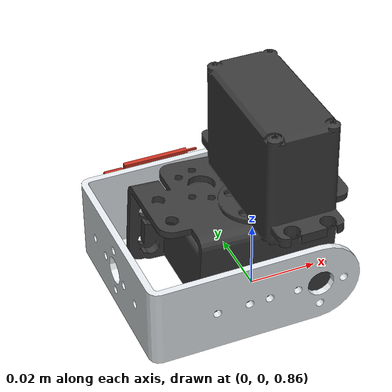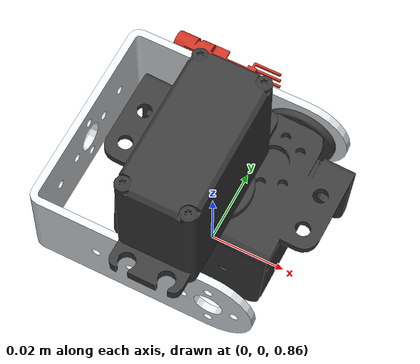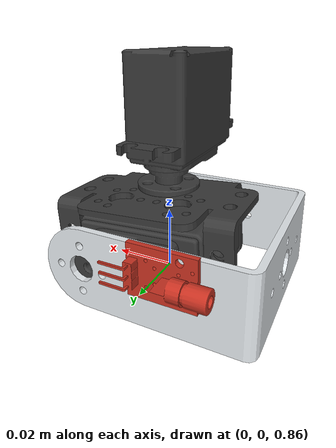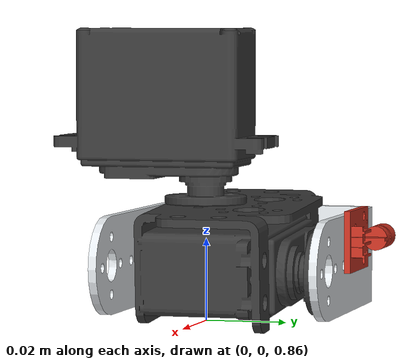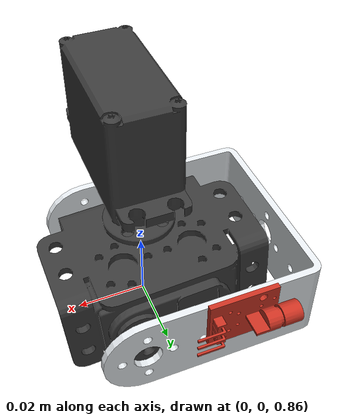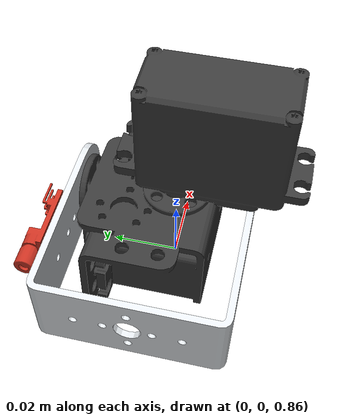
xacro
<?xml version="1.0" encoding="utf-8"?>
<robot xmlns:xacro="http://wiki.ros.org/xacro" name="treatement_equip">

  <link name="base_footprint"/>

  <link name="base_link">
    <inertial>
        <origin
          xyz="-0.00394141808918595 0.0171036303382102 0.0547408845032822"
          rpy="0 0 0" />
        <mass
          value="0.0294734098444175" />
        <inertia
          ixx="4.76394404449093E-06"
          ixy="-2.79739453844788E-13"
          ixz="-1.36431165613198E-13"
          iyy="4.91040634718246E-06"
          iyz="-1.92691774861277E-08"
          izz="1.70457014400278E-06" />
    </inertial>
    <visual>
        <origin
          xyz="0.0042 0.0645 0.0"
          rpy="0 0 0" />
        <geometry>
          <mesh
            filename="package://treatement_cv/meshes/base_link.STL" />
        </geometry>
        <material
          name="">
          <color
            rgba="0.227450980392157 0.227450980392157 0.227450980392157 1" />
        </material>
    </visual>
    <collision>
        <origin
          xyz="0 0 0"
          rpy="0 0 0" />
        <geometry>
          <mesh
            filename="package://treatement_cv/meshes/base_link.STL" />
        </geometry>
    </collision>
  </link>

  <joint name="base_footprint_to_base_joint" type="fixed">
    <origin
      xyz="0.0 0.0 0.93"
      rpy="0 3.141592653589793 3.141592653589793" />
    <parent
      link="base_footprint" />
    <child
      link="base_link" />
  </joint>

  <link name="shoulder_link">
    <inertial>
        <origin
          xyz="0.000437359115628169 0.0120183767154998 0.0051127992025653"
          rpy="0 0 0.06045" />
        <mass
          value="0.0461971155642295" />
        <inertia
          ixx="5.62085958159556E-06"
          ixy="-1.35468421184193E-13"
          ixz="-1.92691846480155E-08"
          iyy="1.18684212659114E-05"
          iyz="5.35655089902047E-07"
          izz="1.03961311052542E-05" />
    </inertial>
    <visual>
        <origin
          xyz="0 0 0"
          rpy="0 0 0.06045" />
        <geometry>
          <mesh
            filename="package://treatement_cv/meshes/shoulder_link.STL" />
        </geometry>
        <material
          name="">
          <color
            rgba="0.227450980392157 0.227450980392157 0.227450980392157 1" />
        </material>
    </visual>
    <collision>
        <origin
          xyz="0 0 0"
          rpy="0 0 0.06045" />
        <geometry>
          <mesh
            filename="package://treatement_cv/meshes/shoulder_link.STL" />
        </geometry>
    </collision>
  </link>

  <joint name="base_to_shoulder_joint" type="continuous">
    <origin
      xyz="0.0 0.0 0.041446"
      rpy="1.5707963267949 0.0 0.0" />
    <parent
      link="base_link" />
    <child
      link="shoulder_link" />
    <axis
      xyz="0 1 0" />
  </joint>

  <link name="holder_link">
    <inertial>
      <origin
        xyz="-0.00506999999999978 -0.0294559964301713 6.93889390390723E-18"
        rpy="0 0 0" />
      <mass
        value="0.0213372016014766" />
      <inertia
        ixx="8.8721565760487E-06"
        ixy="-1.74171149779166E-20"
        ixz="3.13253297973832E-21"
        iyy="1.3390588906091E-05"
        iyz="-3.12105584873914E-21"
        izz="2.01646770189564E-05" />
    </inertial>
    <visual>
      <origin
        xyz="0 0 0"
        rpy="0 0 0" />
      <geometry>
        <mesh
          filename="package://treatement_cv/meshes/holder_link.STL" />
      </geometry>
      <material
        name="">
        <color
          rgba="0.894117647058823 0.913725490196078 0.929411764705882 1" />
      </material>
    </visual>
    <collision>
      <origin
        xyz="0 0 0"
        rpy="0 0 0" />
      <geometry>
        <mesh
          filename="package://treatement_cv/meshes/holder_link.STL" />
      </geometry>
    </collision>
  </link>

  <joint name="shoulder_to_holder_joint" type="continuous">
    <origin
      xyz="0.0103499999999603 0.0147700000000001 0"
      rpy="1.5707963267949 1.5707963267949 0" />
    <parent
      link="shoulder_link" />
    <child
      link="holder_link" />
    <axis
      xyz="1 0 0" />
  </joint>

  <link name="laser_link">
    <inertial>
      <origin
        xyz="0 0.00238155032891173 -0.0023930370283283"
        rpy="0 3.141592653589793 0" />
      <mass
        value="0.000771725491366377" />
      <inertia
        ixx="4.14600743405254E-08"
        ixy="4.74659499937655E-24"
        ixz="-1.3414623869494E-23"
        iyy="4.68865669540154E-08"
        iyz="5.05200453885892E-09"
        izz="1.2322327296653E-08" />
    </inertial>
    <visual>
      <origin
        xyz="0 0 0"
        rpy="0 3.141592653589793 0" />
      <geometry>
        <mesh
          filename="package://treatement_cv/meshes/laser_link.STL" />
      </geometry>
      <material
        name="">
        <color
          rgba="0.792156862745098 0.19607843137255 0.13333333 1" />
      </material>
    </visual>
    <collision>
      <origin
        xyz="0 0 0"
        rpy="0 3.141592653589793 0" />
      <geometry>
        <mesh
          filename="package://treatement_cv/meshes/laser_link.STL" />
      </geometry>
    </collision>
  </link>

  <joint name="holder_to_laser_joint" type="fixed">
    <origin
      xyz="-0.0330700000000001 -0.0259 0.00550000000000014"
      rpy="1.5707963267949 -1.5707963267949 0" />
    <parent
      link="holder_link" />
    <child
      link="laser_link" />
    <axis
      xyz="0 0 0" />
  </joint>
</robot>
